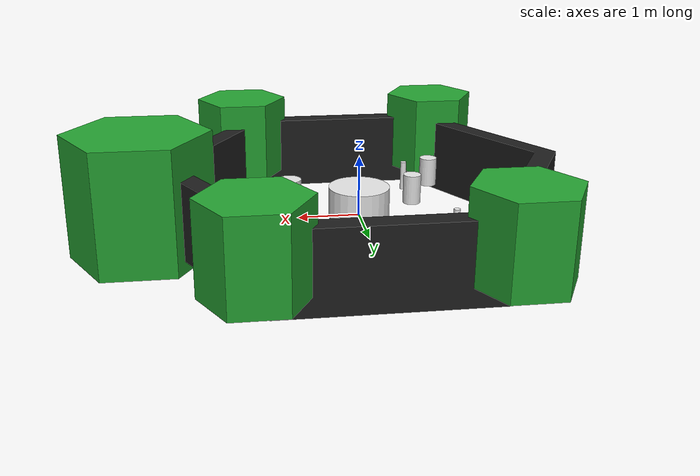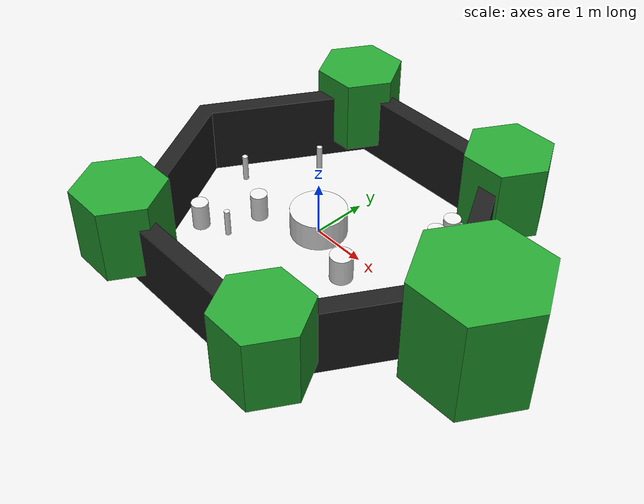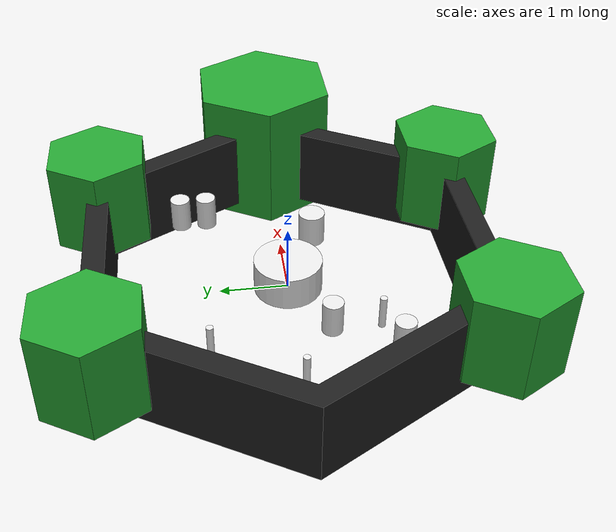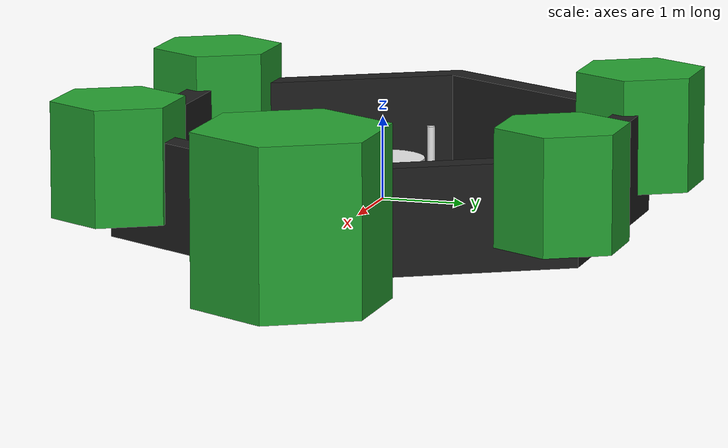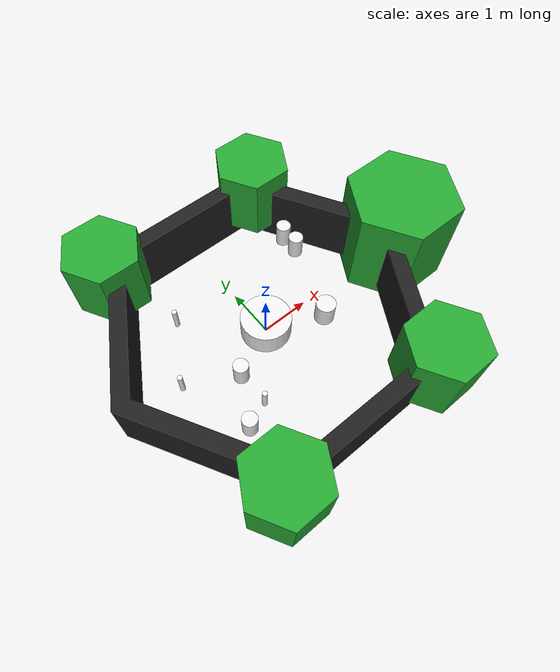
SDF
<sdf version='1.5'>
    <!-- Draw Circle -->
    <model name='ros_symbol'>
      <static>1</static>
      <link name='symbol'>

        <collision name='one_one'>
          <pose>-1.5 -1.4 0.25 0 0 0</pose>
          <geometry>
            <cylinder>
              <radius>0.15</radius>
              <length>0.5</length>
            </cylinder>
          </geometry>
          <max_contacts>10</max_contacts>
          <surface>
            <bounce/>
            <friction>
              <ode/>
            </friction>
            <contact>
              <ode/>
            </contact>
          </surface>
        </collision>

        <visual name='one_one'>
          <pose>-1.5 -1.4 0.25 0 0 0</pose>
          <geometry>
            <cylinder>
              <radius>0.15</radius>
              <length>0.5</length>
            </cylinder>
          </geometry>
          <material>
            <script>
              <uri>file://media/materials/scripts/gazebo.material</uri>
              <name>Gazebo/White</name>
            </script>
          </material>
        </visual>

        <collision name='one_two'>
          <pose>-1.0 -0.5 0.25 0 0 0</pose>
          <geometry>
            <cylinder>
              <radius>0.15</radius>
              <length>0.5</length>
            </cylinder>
          </geometry>
          <max_contacts>10</max_contacts>
          <surface>
            <bounce/>
            <friction>
              <ode/>
            </friction>
            <contact>
              <ode/>
            </contact>
          </surface>
        </collision>

        <visual name='one_two'>
          <pose>-1.0 -0.5 0.25 0 0 0</pose>
          <geometry>
            <cylinder>
              <radius>0.15</radius>
              <length>0.5</length>
            </cylinder>
          </geometry>
          <material>
            <script>
              <uri>file://media/materials/scripts/gazebo.material</uri>
              <name>Gazebo/White</name>
            </script>
          </material>
        </visual>

        <collision name='one_three'>
          <pose>0.0 0.0 0.25 0 0 0</pose>
          <geometry>
            <cylinder>
              <radius>0.5</radius>
              <length>0.5</length>
            </cylinder>
          </geometry>
          <max_contacts>10</max_contacts>
          <surface>
            <bounce/>
            <friction>
              <ode/>
            </friction>
            <contact>
              <ode/>
            </contact>
          </surface>
        </collision>

        <visual name='one_three'>
          <pose>0.0 0.0 0.25 0 0 0</pose>
          <geometry>
            <cylinder>
              <radius>0.5</radius>
              <length>0.5</length>
            </cylinder>
          </geometry>
          <material>
            <script>
              <uri>file://media/materials/scripts/gazebo.material</uri>
              <name>Gazebo/White</name>
            </script>
          </material>
        </visual>

        <collision name='two_one'>
          <pose>1.7 1.1 0.25 0 0 0</pose>
          <geometry>
            <cylinder>
              <radius>0.15</radius>
              <length>0.5</length>
            </cylinder>
          </geometry>
          <max_contacts>10</max_contacts>
          <surface>
            <bounce/>
            <friction>
              <ode/>
            </friction>
            <contact>
              <ode/>
            </contact>
          </surface>
        </collision>

        <visual name='two_one'>
          <pose>1.7 1.1 0.25 0 0 0</pose>
          <geometry>
            <cylinder>
              <radius>0.15</radius>
              <length>0.5</length>
            </cylinder>
          </geometry>
          <material>
            <script>
              <uri>file://media/materials/scripts/gazebo.material</uri>
              <name>Gazebo/White</name>
            </script>
          </material>
        </visual>

        <collision name='two_two'>
          <pose>1.7 1.5 0.25 0 0 0</pose>
          <geometry>
            <cylinder>
              <radius>0.15</radius>
              <length>0.5</length>
            </cylinder>
          </geometry>
          <max_contacts>10</max_contacts>
          <surface>
            <bounce/>
            <friction>
              <ode/>
            </friction>
            <contact>
              <ode/>
            </contact>
          </surface>
        </collision>

        <visual name='two_two'>
          <pose>1.7 1.5 0.25 0 0 0</pose>
          <geometry>
            <cylinder>
              <radius>0.15</radius>
              <length>0.5</length>
            </cylinder>
          </geometry>
          <material>
            <script>
              <uri>file://media/materials/scripts/gazebo.material</uri>
              <name>Gazebo/White</name>
            </script>
          </material>
        </visual>

        <collision name='atwo_two'>
          <pose>-1.3 1.2 0.25 0 0 0</pose>
          <geometry>
            <cylinder>
              <radius>0.05</radius>
              <length>0.5</length>
            </cylinder>
          </geometry>
          <max_contacts>10</max_contacts>
          <surface>
            <bounce/>
            <friction>
              <ode/>
            </friction>
            <contact>
              <ode/>
            </contact>
          </surface>
        </collision>

        <visual name='atwo_two'>
          <pose>-1.3 1.2 0.25 0 0 0</pose>
          <geometry>
            <cylinder>
              <radius>0.05</radius>
              <length>0.5</length>
            </cylinder>
          </geometry>
          <material>
            <script>
              <uri>file://media/materials/scripts/gazebo.material</uri>
              <name>Gazebo/White</name>
            </script>
          </material>
        </visual>

        <collision name='btwo_two'>
          <pose>1.1 -0.5 0.25 0 0 0</pose>
          <geometry>
            <cylinder>
              <radius>0.2</radius>
              <length>0.5</length>
            </cylinder>
          </geometry>
          <max_contacts>10</max_contacts>
          <surface>
            <bounce/>
            <friction>
              <ode/>
            </friction>
            <contact>
              <ode/>
            </contact>
          </surface>
        </collision>

        <visual name='btwo_two'>
          <pose>1.1 -0.5 0.25 0 0 0</pose>
          <geometry>
            <cylinder>
              <radius>0.2</radius>
              <length>0.5</length>
            </cylinder>
          </geometry>
          <material>
            <script>
              <uri>file://media/materials/scripts/gazebo.material</uri>
              <name>Gazebo/White</name>
            </script>
          </material>
        </visual>

        <collision name='ctwo_two'>
          <pose>-2 0 0.25 0 0 0</pose>
          <geometry>
            <cylinder>
              <radius>0.05</radius>
              <length>0.5</length>
            </cylinder>
          </geometry>
          <max_contacts>10</max_contacts>
          <surface>
            <bounce/>
            <friction>
              <ode/>
            </friction>
            <contact>
              <ode/>
            </contact>
          </surface>
        </collision>

        <visual name='ctwo_two'>
          <pose>-2 0 0.25 0 0 0</pose>
          <geometry>
            <cylinder>
              <radius>0.05</radius>
              <length>0.5</length>
            </cylinder>
          </geometry>
          <material>
            <script>
              <uri>file://media/materials/scripts/gazebo.material</uri>
              <name>Gazebo/White</name>
            </script>
          </material>
        </visual>

        <collision name='dtwo_two'>
          <pose>-1 -1.2 0.25 0 0 0</pose>
          <geometry>
            <cylinder>
              <radius>0.05</radius>
              <length>0.5</length>
            </cylinder>
          </geometry>
          <max_contacts>10</max_contacts>
          <surface>
            <bounce/>
            <friction>
              <ode/>
            </friction>
            <contact>
              <ode/>
            </contact>
          </surface>
        </collision>

        <visual name='dtwo_two'>
          <pose>-1 -1.2 0.25 0 0 0</pose>
          <geometry>
            <cylinder>
              <radius>0.05</radius>
              <length>0.5</length>
            </cylinder>
          </geometry>
          <material>
            <script>
              <uri>file://media/materials/scripts/gazebo.material</uri>
              <name>Gazebo/White</name>
            </script>
          </material>
        </visual>

        <!-- Draw Hexagon -->
        <collision name='head'>
          <pose>3.5 0 -0.5 0 0 0</pose>
          <geometry>
            <mesh>
              <uri>model://turtlebot3_world/meshes/hexagon.dae</uri>
              <scale>0.8 0.8 0.8</scale>
            </mesh>
          </geometry>
          <max_contacts>10</max_contacts>
          <surface>
            <bounce/>
            <friction>
              <ode/>
            </friction>
            <contact>
              <ode/>
            </contact>
          </surface>
        </collision>

        <visual name='head'>
          <pose>3.5 0 -0.5 0 0 0</pose>
          <geometry>
            <mesh>
              <uri>model://turtlebot3_world/meshes/hexagon.dae</uri>
              <scale>0.8 0.8 0.8</scale>
            </mesh>
          </geometry>
          <material>
            <script>
              <uri>file://media/materials/scripts/gazebo.material</uri>
              <name>Gazebo/Green</name>
            </script>
          </material>
        </visual>

        <collision name='left_hand'>
          <pose>1.8 2.7 0 0 0 0</pose>
          <geometry>
            <mesh>
              <uri>model://turtlebot3_world/meshes/hexagon.dae</uri>
              <scale>0.55 0.55 0.55</scale>
            </mesh>
          </geometry>
          <max_contacts>10</max_contacts>
          <surface>
            <bounce/>
            <friction>
              <ode/>
            </friction>
            <contact>
              <ode/>
            </contact>
          </surface>
        </collision>

        <visual name='left_hand'>
          <pose>1.8 2.7 0 0 0 0</pose>
          <geometry>
            <mesh>
              <uri>model://turtlebot3_world/meshes/hexagon.dae</uri>
              <scale>0.55 0.55 0.55</scale>
            </mesh>
          </geometry>
          <material>
            <script>
              <uri>file://media/materials/scripts/gazebo.material</uri>
              <name>Gazebo/Green</name>
            </script>
          </material>
        </visual>

        <collision name='right_hand'>
          <pose>1.8 -2.7 0 0 0 0</pose>
          <geometry>
            <mesh>
              <uri>model://turtlebot3_world/meshes/hexagon.dae</uri>
              <scale>0.55 0.55 0.55</scale>
            </mesh>
          </geometry>
          <max_contacts>10</max_contacts>
          <surface>
            <bounce/>
            <friction>
              <ode/>
            </friction>
            <contact>
              <ode/>
            </contact>
          </surface>
        </collision>

        <visual name='right_hand'>
          <pose>1.8 -2.7 0 0 0 0</pose>
          <geometry>
            <mesh>
              <uri>model://turtlebot3_world/meshes/hexagon.dae</uri>
              <scale>0.55 0.55 0.55</scale>
            </mesh>
          </geometry>
          <material>
            <script>
              <uri>file://media/materials/scripts/gazebo.material</uri>
              <name>Gazebo/Green</name>
            </script>
          </material>
        </visual>

        <collision name='left_foot'>
          <pose>-1.8 2.7 0 0 0 0</pose>
          <geometry>
            <mesh>
              <uri>model://turtlebot3_world/meshes/hexagon.dae</uri>
              <scale>0.55 0.55 0.55</scale>
            </mesh>
          </geometry>
          <max_contacts>10</max_contacts>
          <surface>
            <bounce/>
            <friction>
              <ode/>
            </friction>
            <contact>
              <ode/>
            </contact>
          </surface>
        </collision>

        <visual name='left_foot'>
          <pose>-1.8 2.7 0 0 0 0</pose>
          <geometry>
            <mesh>
              <uri>model://turtlebot3_world/meshes/hexagon.dae</uri>
              <scale>0.55 0.55 0.55</scale>
            </mesh>
          </geometry>
          <material>
            <script>
              <uri>file://media/materials/scripts/gazebo.material</uri>
              <name>Gazebo/Green</name>
            </script>
          </material>
        </visual>

        <collision name='right_foot'>
          <pose>-1.8 -2.7 0 0 0 0</pose>
          <geometry>
            <mesh>
              <uri>model://turtlebot3_world/meshes/hexagon.dae</uri>
              <scale>0.55 0.55 0.55</scale>
            </mesh>
          </geometry>
          <max_contacts>10</max_contacts>
          <surface>
            <bounce/>
            <friction>
              <ode/>
            </friction>
            <contact>
              <ode/>
            </contact>
          </surface>
        </collision>

        <visual name='right_foot'>
          <pose>-1.8 -2.7 0 0 0 0</pose>
          <geometry>
            <mesh>
              <uri>model://turtlebot3_world/meshes/hexagon.dae</uri>
              <scale>0.55 0.55 0.55</scale>
            </mesh>
          </geometry>
          <material>
            <script>
              <uri>file://media/materials/scripts/gazebo.material</uri>
              <name>Gazebo/Green</name>
            </script>
          </material>
        </visual>

        <!-- Draw Wall -->
        <collision name='body'>
        <pose>0 0 -0.3 0 0 -1.5708</pose>
        <geometry>
          <mesh>
            <uri>model://turtlebot3_world/meshes/wall.dae</uri>
            <scale>0.25 0.25 0.25</scale>
          </mesh>
        </geometry>
        <max_contacts>10</max_contacts>
        <surface>
          <bounce/>
          <friction>
            <ode/>
          </friction>
          <contact>
            <ode/>
          </contact>
        </surface>
      </collision>

      <visual name='body'>
        <pose>0 0 -0.3 0 0 -1.5708</pose>
        <geometry>
          <mesh>
            <uri>model://turtlebot3_world/meshes/wall.dae</uri>
            <scale>0.25 0.25 0.25</scale>
          </mesh>
        </geometry>
        <material>
          <script>
            <uri>file://media/materials/scripts/gazebo.material</uri>
            <name>Gazebo/FlatBlack</name>
          </script>
        </material>
      </visual>
    </link>
  </model>
</sdf>
